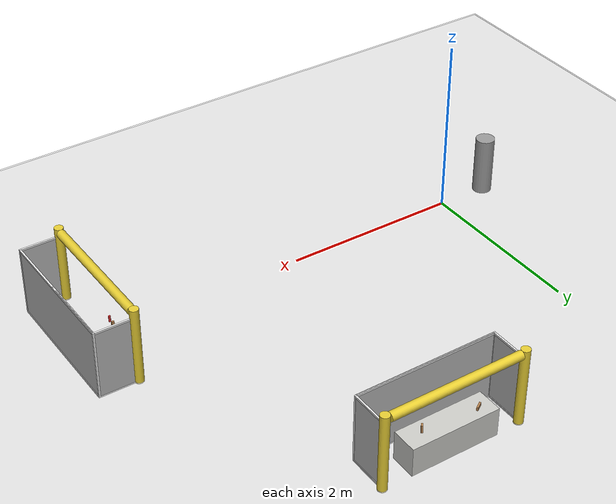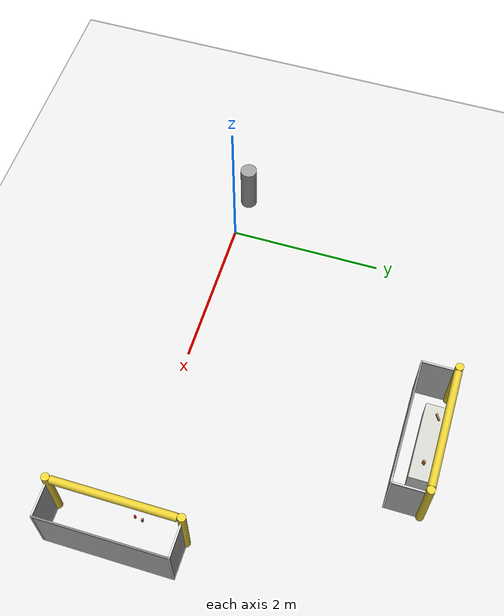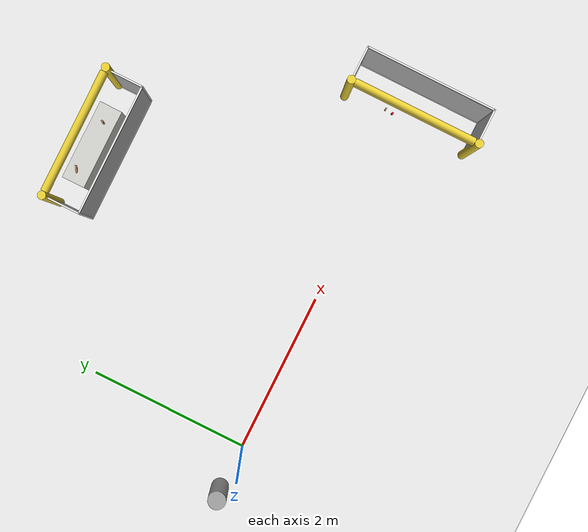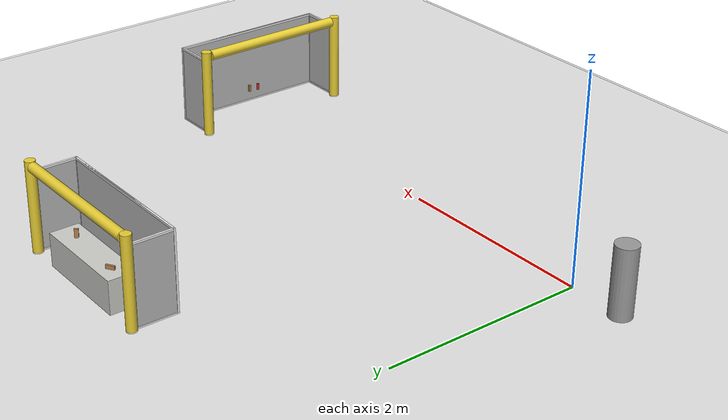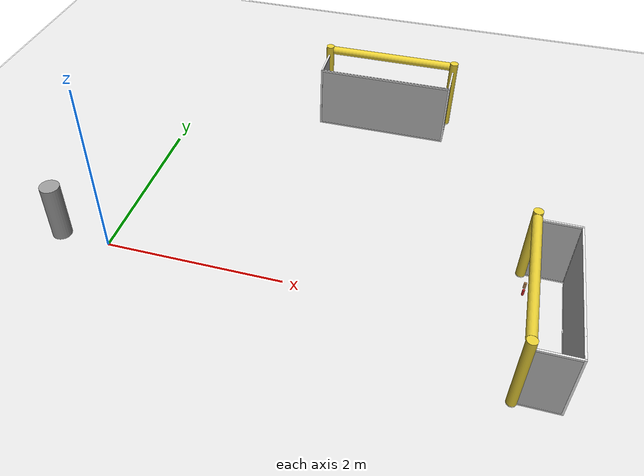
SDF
<sdf version="1.6">
 <world name="default">
  <model name="ground_plane">
   <static>1</static>
   <link name="link">
    <collision name="collision">
     <geometry><plane><normal>0 0 1</normal><size>100 100</size></plane></geometry>
     <surface>
      <contact><collide_bitmask>65535</collide_bitmask></contact>
      <friction><ode><mu>100</mu><mu2>50</mu2></ode></friction>
     </surface>
    </collision>
    <visual name="visual">
     <cast_shadows>0</cast_shadows>
     <geometry><plane><normal>0 0 1</normal><size>100 100</size></plane></geometry>
     <material>
      <script><uri>file://media/materials/scripts/gazebo.material</uri><name>Gazebo/Grey</name></script>
     </material>
    </visual>
   </link>
  </model>
  <model name="small_table_0">
   <link name="link">
    <inertial>
     <mass>1000</mass>
     <inertia><ixx>92.2402</ixx><ixy>0</ixy><ixz>0</ixz><iyy>15.7852</iyy><iyz>0</iyz><izz>90.2116</izz></inertia>
    </inertial>
    <visual name="visual">
     <geometry><box><size>0.287297 1 0.326929</size></box></geometry>
     <material>
      <script><name>Gazebo/CeilingTiled</name><uri>file://media/materials/scripts/gazebo.material</uri></script>
      <shader type="pixel"><normal_map>__default__</normal_map></shader>
      <ambient>0.7 0.7 0.7 1</ambient>
      <diffuse>0.9 0.9 0.9 1</diffuse>
      <specular>0.01 0.01 0.01 1</specular>
      <emissive>0 0 0 1</emissive>
     </material>
    </visual>
    <collision name="collision">
     <geometry><box><size>0.287297 1 0.326929</size></box></geometry>
     <surface>
      <friction>
       <ode><mu>1</mu><mu2>1</mu2><fdir1>0 0 0</fdir1><slip1>0</slip1><slip2>0</slip2></ode>
       <torsional>
        <coefficient>1</coefficient>
        <patch_radius>0</patch_radius>
        <surface_radius>0</surface_radius>
        <use_patch_radius>1</use_patch_radius>
        <ode><slip>0</slip></ode>
       </torsional>
      </friction>
      <bounce><restitution_coefficient>0</restitution_coefficient><threshold>1e+06</threshold></bounce>
      <contact>
       <collide_without_contact>0</collide_without_contact>
       <collide_without_contact_bitmask>1</collide_without_contact_bitmask>
       <collide_bitmask>1</collide_bitmask>
       <ode>
        <soft_cfm>0</soft_cfm>
        <soft_erp>0.2</soft_erp>
        <kp>1e+13</kp>
        <kd>1</kd>
        <max_vel>0.01</max_vel>
        <min_depth>0</min_depth>
       </ode>
       <bullet>
        <split_impulse>1</split_impulse>
        <split_impulse_penetration_threshold>-0.01</split_impulse_penetration_threshold>
        <soft_cfm>0</soft_cfm>
        <soft_erp>0.2</soft_erp>
        <kp>1e+13</kp>
        <kd>1</kd>
       </bullet>
      </contact>
     </surface>
    </collision>
   </link>
   <static>0</static>
   <pose>2.45053 3.20313 0.173964 0 -0 1.56878</pose>
  </model>
  <model name="RoboCup 2014 SPL Goal">
   <static>1</static>
   <link name="left_post">
    <pose>0 0.8 0.45 0 -0 0</pose>
    <collision name="collision">
     <geometry><cylinder><radius>0.05</radius><length>0.9</length></cylinder></geometry>
    </collision>
    <visual name="visual">
     <geometry><cylinder><radius>0.05</radius><length>0.9</length></cylinder></geometry>
     <material>
      <script><uri>file://media/materials/scripts/gazebo.material</uri><name>Gazebo/ZincYellow</name></script>
     </material>
    </visual>
   </link>
   <link name="left_support_horiz_lower">
    <pose>0.24 0.8 0.01 0 -0 0</pose>
    <collision name="collision"><geometry><box><size>0.38 0.02 0.02</size></box></geometry></collision>
    <visual name="visual">
     <geometry><box><size>0.38 0.02 0.02</size></box></geometry>
     <material>
      <script><uri>file://media/materials/scripts/gazebo.material</uri><name>Gazebo/White</name></script>
     </material>
    </visual>
   </link>
   <link name="left_support_horiz_upper">
    <pose>0.24 0.8 0.79 0 -0 0</pose>
    <collision name="collision"><geometry><box><size>0.38 0.02 0.02</size></box></geometry></collision>
    <visual name="visual">
     <geometry><box><size>0.38 0.02 0.02</size></box></geometry>
     <material>
      <script><uri>file://media/materials/scripts/gazebo.material</uri><name>Gazebo/White</name></script>
     </material>
    </visual>
   </link>
   <link name="left_support_vertical">
    <pose>0.44 0.8 0.4 3.14159 1.57079 3.14159</pose>
    <collision name="collision"><geometry><box><size>0.8 0.02 0.02</size></box></geometry></collision>
    <visual name="visual">
     <geometry><box><size>0.8 0.02 0.02</size></box></geometry>
     <material>
      <script><uri>file://media/materials/scripts/gazebo.material</uri><name>Gazebo/White</name></script>
     </material>
    </visual>
   </link>
   <link name="right_support_horiz_lower">
    <pose>0.24 -0.8 0.01 0 -0 0</pose>
    <collision name="collision"><geometry><box><size>0.38 0.02 0.02</size></box></geometry></collision>
    <visual name="visual">
     <geometry><box><size>0.38 0.02 0.02</size></box></geometry>
     <material>
      <script><uri>file://media/materials/scripts/gazebo.material</uri><name>Gazebo/White</name></script>
     </material>
    </visual>
   </link>
   <link name="right_support_horiz_upper">
    <pose>0.24 -0.8 0.79 0 -0 0</pose>
    <collision name="collision"><geometry><box><size>0.38 0.02 0.02</size></box></geometry></collision>
    <visual name="visual">
     <geometry><box><size>0.38 0.02 0.02</size></box></geometry>
     <material>
      <script><uri>file://media/materials/scripts/gazebo.material</uri><name>Gazebo/White</name></script>
     </material>
    </visual>
   </link>
   <link name="right_support_vertical">
    <pose>0.44 -0.8 0.4 3.14159 1.57079 3.14159</pose>
    <collision name="collision"><geometry><box><size>0.8 0.02 0.02</size></box></geometry></collision>
    <visual name="visual">
     <geometry><box><size>0.8 0.02 0.02</size></box></geometry>
     <material>
      <script><uri>file://media/materials/scripts/gazebo.material</uri><name>Gazebo/White</name></script>
     </material>
    </visual>
   </link>
   <link name="center_support_horiz_lower">
    <pose>0.44 0 0.01 3.14159 1.57079 3.14159</pose>
    <collision name="collision"><geometry><box><size>0.02 1.58 0.02</size></box></geometry></collision>
    <visual name="visual">
     <geometry><box><size>0.02 1.58 0.02</size></box></geometry>
     <material>
      <script><uri>file://media/materials/scripts/gazebo.material</uri><name>Gazebo/White</name></script>
     </material>
    </visual>
   </link>
   <link name="center_support_horiz_upper">
    <pose>0.44 0 0.79 3.14159 1.57079 3.14159</pose>
    <collision name="collision"><geometry><box><size>0.02 1.58 0.02</size></box></geometry></collision>
    <visual name="visual">
     <geometry><box><size>0.02 1.58 0.02</size></box></geometry>
     <material>
      <script><uri>file://media/materials/scripts/gazebo.material</uri><name>Gazebo/White</name></script>
     </material>
    </visual>
   </link>
   <link name="right_post">
    <pose>0 -0.8 0.45 0 -0 0</pose>
    <collision name="collision">
     <geometry><cylinder><radius>0.05</radius><length>0.9</length></cylinder></geometry>
    </collision>
    <visual name="visual">
     <geometry><cylinder><radius>0.05</radius><length>0.9</length></cylinder></geometry>
     <material>
      <script><uri>file://media/materials/scripts/gazebo.material</uri><name>Gazebo/ZincYellow</name></script>
     </material>
    </visual>
   </link>
   <link name="crossbar">
    <pose>0 0 0.85 1.57 1.57 0</pose>
    <collision name="collision">
     <geometry><cylinder><radius>0.05</radius><length>1.5</length></cylinder></geometry>
    </collision>
    <visual name="visual">
     <geometry><cylinder><radius>0.05</radius><length>1.5</length></cylinder></geometry>
     <material>
      <script><uri>file://media/materials/scripts/gazebo.material</uri><name>Gazebo/ZincYellow</name></script>
     </material>
    </visual>
   </link>
   <link name="center_net">
    <pose>0.44 0 0.4 0 -0 0</pose>
    <collision name="collision"><geometry><box><size>0.01 1.6 0.8</size></box></geometry></collision>
    <visual name="visual">
     <geometry><box><size>0.01 1.6 0.8</size></box></geometry>
     <material>
      <script>
       <uri>model://robocup09_spl_field/materials/scripts/</uri>
       <uri>model://robocup09_spl_field/materials/textures/</uri>
       <name>RoboCup/Net</name>
      </script>
     </material>
    </visual>
   </link>
   <link name="left_net">
    <pose>0.24 0.8 0.4 0 -0 0</pose>
    <collision name="collision"><geometry><box><size>0.38 0.01 0.76</size></box></geometry></collision>
    <visual name="visual">
     <geometry><box><size>0.38 0.01 0.76</size></box></geometry>
     <material>
      <script>
       <uri>model://robocup09_spl_field/materials/scripts/</uri>
       <uri>model://robocup09_spl_field/materials/textures/</uri>
       <name>RoboCup/Net</name>
      </script>
     </material>
    </visual>
   </link>
   <link name="right_net">
    <pose>0.24 -0.8 0.4 0 -0 0</pose>
    <collision name="collision"><geometry><box><size>0.38 0.01 0.76</size></box></geometry></collision>
    <visual name="visual">
     <geometry><box><size>0.38 0.01 0.76</size></box></geometry>
     <material>
      <script>
       <uri>model://robocup09_spl_field/materials/scripts/</uri>
       <uri>model://robocup09_spl_field/materials/textures/</uri>
       <name>RoboCup/Net</name>
      </script>
     </material>
    </visual>
   </link>
   <pose>4.37127 -0.005545 0 0 -0 0</pose>
  </model>
  <model name="RoboCup 2014 SPL Goal_1">
   <static>1</static>
   <link name="left_post">
    <pose>0 0.8 0.45 0 -0 0</pose>
    <collision name="collision">
     <geometry><cylinder><radius>0.05</radius><length>0.9</length></cylinder></geometry>
    </collision>
    <visual name="visual">
     <geometry><cylinder><radius>0.05</radius><length>0.9</length></cylinder></geometry>
     <material>
      <script><uri>file://media/materials/scripts/gazebo.material</uri><name>Gazebo/ZincYellow</name></script>
     </material>
    </visual>
   </link>
   <link name="left_support_horiz_lower">
    <pose>0.24 0.8 0.01 0 -0 0</pose>
    <collision name="collision"><geometry><box><size>0.38 0.02 0.02</size></box></geometry></collision>
    <visual name="visual">
     <geometry><box><size>0.38 0.02 0.02</size></box></geometry>
     <material>
      <script><uri>file://media/materials/scripts/gazebo.material</uri><name>Gazebo/White</name></script>
     </material>
    </visual>
   </link>
   <link name="left_support_horiz_upper">
    <pose>0.24 0.8 0.79 0 -0 0</pose>
    <collision name="collision"><geometry><box><size>0.38 0.02 0.02</size></box></geometry></collision>
    <visual name="visual">
     <geometry><box><size>0.38 0.02 0.02</size></box></geometry>
     <material>
      <script><uri>file://media/materials/scripts/gazebo.material</uri><name>Gazebo/White</name></script>
     </material>
    </visual>
   </link>
   <link name="left_support_vertical">
    <pose>0.44 0.8 0.4 3.14159 1.57079 3.14159</pose>
    <collision name="collision"><geometry><box><size>0.8 0.02 0.02</size></box></geometry></collision>
    <visual name="visual">
     <geometry><box><size>0.8 0.02 0.02</size></box></geometry>
     <material>
      <script><uri>file://media/materials/scripts/gazebo.material</uri><name>Gazebo/White</name></script>
     </material>
    </visual>
   </link>
   <link name="right_support_horiz_lower">
    <pose>0.24 -0.8 0.01 0 -0 0</pose>
    <collision name="collision"><geometry><box><size>0.38 0.02 0.02</size></box></geometry></collision>
    <visual name="visual">
     <geometry><box><size>0.38 0.02 0.02</size></box></geometry>
     <material>
      <script><uri>file://media/materials/scripts/gazebo.material</uri><name>Gazebo/White</name></script>
     </material>
    </visual>
   </link>
   <link name="right_support_horiz_upper">
    <pose>0.24 -0.8 0.79 0 -0 0</pose>
    <collision name="collision"><geometry><box><size>0.38 0.02 0.02</size></box></geometry></collision>
    <visual name="visual">
     <geometry><box><size>0.38 0.02 0.02</size></box></geometry>
     <material>
      <script><uri>file://media/materials/scripts/gazebo.material</uri><name>Gazebo/White</name></script>
     </material>
    </visual>
   </link>
   <link name="right_support_vertical">
    <pose>0.44 -0.8 0.4 3.14159 1.57079 3.14159</pose>
    <collision name="collision"><geometry><box><size>0.8 0.02 0.02</size></box></geometry></collision>
    <visual name="visual">
     <geometry><box><size>0.8 0.02 0.02</size></box></geometry>
     <material>
      <script><uri>file://media/materials/scripts/gazebo.material</uri><name>Gazebo/White</name></script>
     </material>
    </visual>
   </link>
   <link name="center_support_horiz_lower">
    <pose>0.44 0 0.01 3.14159 1.57079 3.14159</pose>
    <collision name="collision"><geometry><box><size>0.02 1.58 0.02</size></box></geometry></collision>
    <visual name="visual">
     <geometry><box><size>0.02 1.58 0.02</size></box></geometry>
     <material>
      <script><uri>file://media/materials/scripts/gazebo.material</uri><name>Gazebo/White</name></script>
     </material>
    </visual>
   </link>
   <link name="center_support_horiz_upper">
    <pose>0.44 0 0.79 3.14159 1.57079 3.14159</pose>
    <collision name="collision"><geometry><box><size>0.02 1.58 0.02</size></box></geometry></collision>
    <visual name="visual">
     <geometry><box><size>0.02 1.58 0.02</size></box></geometry>
     <material>
      <script><uri>file://media/materials/scripts/gazebo.material</uri><name>Gazebo/White</name></script>
     </material>
    </visual>
   </link>
   <link name="right_post">
    <pose>0 -0.8 0.45 0 -0 0</pose>
    <collision name="collision">
     <geometry><cylinder><radius>0.05</radius><length>0.9</length></cylinder></geometry>
    </collision>
    <visual name="visual">
     <geometry><cylinder><radius>0.05</radius><length>0.9</length></cylinder></geometry>
     <material>
      <script><uri>file://media/materials/scripts/gazebo.material</uri><name>Gazebo/ZincYellow</name></script>
     </material>
    </visual>
   </link>
   <link name="crossbar">
    <pose>0 0 0.85 1.57 1.57 0</pose>
    <collision name="collision">
     <geometry><cylinder><radius>0.05</radius><length>1.5</length></cylinder></geometry>
    </collision>
    <visual name="visual">
     <geometry><cylinder><radius>0.05</radius><length>1.5</length></cylinder></geometry>
     <material>
      <script><uri>file://media/materials/scripts/gazebo.material</uri><name>Gazebo/ZincYellow</name></script>
     </material>
    </visual>
   </link>
   <link name="center_net">
    <pose>0.44 0 0.4 0 -0 0</pose>
    <collision name="collision"><geometry><box><size>0.01 1.6 0.8</size></box></geometry></collision>
    <visual name="visual">
     <geometry><box><size>0.01 1.6 0.8</size></box></geometry>
     <material>
      <script>
       <uri>model://robocup09_spl_field/materials/scripts/</uri>
       <uri>model://robocup09_spl_field/materials/textures/</uri>
       <name>RoboCup/Net</name>
      </script>
     </material>
    </visual>
   </link>
   <link name="left_net">
    <pose>0.24 0.8 0.4 0 -0 0</pose>
    <collision name="collision"><geometry><box><size>0.38 0.01 0.76</size></box></geometry></collision>
    <visual name="visual">
     <geometry><box><size>0.38 0.01 0.76</size></box></geometry>
     <material>
      <script>
       <uri>model://robocup09_spl_field/materials/scripts/</uri>
       <uri>model://robocup09_spl_field/materials/textures/</uri>
       <name>RoboCup/Net</name>
      </script>
     </material>
    </visual>
   </link>
   <link name="right_net">
    <pose>0.24 -0.8 0.4 0 -0 0</pose>
    <collision name="collision"><geometry><box><size>0.38 0.01 0.76</size></box></geometry></collision>
    <visual name="visual">
     <geometry><box><size>0.38 0.01 0.76</size></box></geometry>
     <material>
      <script>
       <uri>model://robocup09_spl_field/materials/scripts/</uri>
       <uri>model://robocup09_spl_field/materials/textures/</uri>
       <name>RoboCup/Net</name>
      </script>
     </material>
    </visual>
   </link>
   <pose>2.46374 3.31443 -0 0 0 -1.56937</pose>
  </model>
  <model name="unit_cylinder">
   <link name="link">
    <inertial>
     <mass>1</mass>
     <inertia><ixx>0.145833</ixx><ixy>0</ixy><ixz>0</ixz><iyy>0.145833</iyy><iyz>0</iyz><izz>0.125</izz></inertia>
    </inertial>
    <visual name="visual">
     <geometry><cylinder><radius>0.108142</radius><length>0.679054</length></cylinder></geometry>
     <material>
      <script><name>Gazebo/Grey</name><uri>file://media/materials/scripts/gazebo.material</uri></script>
     </material>
    </visual>
    <collision name="collision">
     <geometry><cylinder><radius>0.108142</radius><length>0.679054</length></cylinder></geometry>
     <surface>
      <friction>
       <ode><mu>1</mu><mu2>1</mu2><fdir1>0 0 0</fdir1><slip1>0</slip1><slip2>0</slip2></ode>
       <torsional>
        <coefficient>1</coefficient>
        <patch_radius>0</patch_radius>
        <surface_radius>0</surface_radius>
        <use_patch_radius>1</use_patch_radius>
        <ode><slip>0</slip></ode>
       </torsional>
      </friction>
      <bounce><restitution_coefficient>0</restitution_coefficient><threshold>1e+06</threshold></bounce>
      <contact>
       <collide_without_contact>0</collide_without_contact>
       <collide_without_contact_bitmask>1</collide_without_contact_bitmask>
       <collide_bitmask>1</collide_bitmask>
       <ode>
        <soft_cfm>0</soft_cfm>
        <soft_erp>0.2</soft_erp>
        <kp>1e+13</kp>
        <kd>1</kd>
        <max_vel>0.01</max_vel>
        <min_depth>0</min_depth>
       </ode>
       <bullet>
        <split_impulse>1</split_impulse>
        <split_impulse_penetration_threshold>-0.01</split_impulse_penetration_threshold>
        <soft_cfm>0</soft_cfm>
        <soft_erp>0.2</soft_erp>
        <kp>1e+13</kp>
        <kd>1</kd>
       </bullet>
      </contact>
     </surface>
    </collision>
   </link>
   <static>0</static>
   <pose>-0.564139 0.019757 0.350018 -2e-06 -2e-06 4e-06</pose>
  </model>
  <model name="Grasp_Rectangular_0">
   <link name="link">
    <inertial>
     <mass>0.05</mass>
     <inertia>
      <ixx>7.243e-05</ixx>
      <ixy>0</ixy>
      <ixz>0</ixz>
      <iyy>6.624e-05</iyy>
      <iyz>0</iyz>
      <izz>1.446e-05</izz>
     </inertia>
    </inertial>
    <visual name="visual">
     <geometry><box><size>0.018685 0.038411 0.085607</size></box></geometry>
     <material>
      <script><name>Gazebo/Wood</name><uri>file://media/materials/scripts/gazebo.material</uri></script>
      <shader type="vertex"><normal_map>__default__</normal_map></shader>
      <ambient>0.8 0.8 0.8 1</ambient>
      <diffuse>0.7 0.7 0.7 1</diffuse>
      <specular>0.01 0.01 0.01 1</specular>
      <emissive>0.2 0.2 0.2 1</emissive>
     </material>
    </visual>
    <collision name="collision">
     <geometry><box><size>0.018685 0.038411 0.085607</size></box></geometry>
     <surface>
      <friction>
       <ode><mu>20</mu><mu2>20</mu2><fdir1>0 0 0</fdir1><slip1>0</slip1><slip2>0</slip2></ode>
       <torsional>
        <coefficient>1</coefficient>
        <patch_radius>0</patch_radius>
        <surface_radius>0</surface_radius>
        <use_patch_radius>1</use_patch_radius>
        <ode><slip>0</slip></ode>
       </torsional>
      </friction>
      <bounce><restitution_coefficient>0</restitution_coefficient><threshold>1e+06</threshold></bounce>
      <contact>
       <collide_without_contact>0</collide_without_contact>
       <collide_without_contact_bitmask>1</collide_without_contact_bitmask>
       <collide_bitmask>1</collide_bitmask>
       <ode>
        <soft_cfm>0</soft_cfm>
        <soft_erp>0.2</soft_erp>
        <kp>1e+13</kp>
        <kd>1</kd>
        <max_vel>0.01</max_vel>
        <min_depth>0</min_depth>
       </ode>
       <bullet>
        <split_impulse>1</split_impulse>
        <split_impulse_penetration_threshold>-0.01</split_impulse_penetration_threshold>
        <soft_cfm>0</soft_cfm>
        <soft_erp>0.2</soft_erp>
        <kp>1e+13</kp>
        <kd>1</kd>
       </bullet>
      </contact>
     </surface>
    </collision>
   </link>
   <static>0</static>
   <pose>2.74107 3.19481 0.380232 -1.1e-05 -6e-06 -0.583109</pose>
  </model>
  <model name="Grasp_Rectangular_1">
   <link name="link">
    <inertial>
     <mass>0.05</mass>
     <inertia>
      <ixx>7.243e-05</ixx>
      <ixy>0</ixy>
      <ixz>0</ixz>
      <iyy>6.624e-05</iyy>
      <iyz>0</iyz>
      <izz>1.446e-05</izz>
     </inertia>
    </inertial>
    <visual name="visual">
     <geometry><box><size>0.018685 0.038411 0.085607</size></box></geometry>
     <material>
      <script><name>Gazebo/Wood</name><uri>file://media/materials/scripts/gazebo.material</uri></script>
      <shader type="vertex"><normal_map>__default__</normal_map></shader>
      <ambient>0.8 0.8 0.8 1</ambient>
      <diffuse>0.7 0.7 0.7 1</diffuse>
      <specular>0.01 0.01 0.01 1</specular>
      <emissive>0.2 0.2 0.2 1</emissive>
     </material>
    </visual>
    <collision name="collision">
     <geometry><box><size>0.018685 0.038411 0.085607</size></box></geometry>
     <surface>
      <friction>
       <ode><mu>20</mu><mu2>20</mu2><fdir1>0 0 0</fdir1><slip1>0</slip1><slip2>0</slip2></ode>
       <torsional>
        <coefficient>1</coefficient>
        <patch_radius>0</patch_radius>
        <surface_radius>0</surface_radius>
        <use_patch_radius>1</use_patch_radius>
        <ode><slip>0</slip></ode>
       </torsional>
      </friction>
      <bounce><restitution_coefficient>0</restitution_coefficient><threshold>1e+06</threshold></bounce>
      <contact>
       <collide_without_contact>0</collide_without_contact>
       <collide_without_contact_bitmask>1</collide_without_contact_bitmask>
       <collide_bitmask>1</collide_bitmask>
       <ode>
        <soft_cfm>0</soft_cfm>
        <soft_erp>0.2</soft_erp>
        <kp>1e+13</kp>
        <kd>1</kd>
        <max_vel>0.01</max_vel>
        <min_depth>0</min_depth>
       </ode>
       <bullet>
        <split_impulse>1</split_impulse>
        <split_impulse_penetration_threshold>-0.01</split_impulse_penetration_threshold>
        <soft_cfm>0</soft_cfm>
        <soft_erp>0.2</soft_erp>
        <kp>1e+13</kp>
        <kd>1</kd>
       </bullet>
      </contact>
     </surface>
    </collision>
   </link>
   <static>0</static>
   <pose>2.10787 3.23208 0.356634 1.5708 -0 -1.00679</pose>
  </model>
  <model name="Grasp_Rectangular">
   <link name="link">
    <inertial>
     <mass>0.0282956</mass>
     <inertia>
      <ixx>1.26169e-05</ixx>
      <ixy>0</ixy>
      <ixz>0</ixz>
      <iyy>1.16642e-05</iyy>
      <iyz>0</iyz>
      <izz>2.59914e-06</izz>
     </inertia>
    </inertial>
    <visual name="visual">
     <geometry><box><size>0.018685 0.027444 0.067805</size></box></geometry>
     <material>
      <script><name>Gazebo/Wood</name><uri>file://media/materials/scripts/gazebo.material</uri></script>
      <shader type="vertex"><normal_map>__default__</normal_map></shader>
      <ambient>0.8 0.8 0.8 1</ambient>
      <diffuse>0.7 0.7 0.7 1</diffuse>
      <specular>0.01 0.01 0.01 1</specular>
      <emissive>0.2 0.2 0.2 1</emissive>
     </material>
    </visual>
    <collision name="collision">
     <geometry><box><size>0.018685 0.027444 0.067805</size></box></geometry>
     <surface>
      <friction>
       <ode><mu>20</mu><mu2>20</mu2><fdir1>0 0 0</fdir1><slip1>0</slip1><slip2>0</slip2></ode>
       <torsional>
        <coefficient>1</coefficient>
        <patch_radius>0</patch_radius>
        <surface_radius>0</surface_radius>
        <use_patch_radius>1</use_patch_radius>
        <ode><slip>0</slip></ode>
       </torsional>
      </friction>
      <bounce><restitution_coefficient>0</restitution_coefficient><threshold>1e+06</threshold></bounce>
      <contact>
       <collide_without_contact>0</collide_without_contact>
       <collide_without_contact_bitmask>1</collide_without_contact_bitmask>
       <collide_bitmask>1</collide_bitmask>
       <ode>
        <soft_cfm>0</soft_cfm>
        <soft_erp>0.2</soft_erp>
        <kp>1e+13</kp>
        <kd>1</kd>
        <max_vel>0.01</max_vel>
        <min_depth>0</min_depth>
       </ode>
       <bullet>
        <split_impulse>1</split_impulse>
        <split_impulse_penetration_threshold>-0.01</split_impulse_penetration_threshold>
        <soft_cfm>0</soft_cfm>
        <soft_erp>0.2</soft_erp>
        <kp>1e+13</kp>
        <kd>1</kd>
       </bullet>
      </contact>
     </surface>
    </collision>
   </link>
   <static>0</static>
   <pose>4.3682 0.287016 0.371331 0 -0 1.44128</pose>
  </model>
  <model name="grasp_cylinder_2">
   <link name="link">
    <inertial>
     <mass>0.0408073</mass>
     <inertia>
      <ixx>1.67798e-05</ixx>
      <ixy>0</ixy>
      <ixz>0</ixz>
      <iyy>1.67798e-05</iyy>
      <iyz>0</iyz>
      <izz>3.02683e-06</izz>
     </inertia>
    </inertial>
    <visual name="visual">
     <geometry><cylinder><radius>0.01218</radius><length>0.0670027</length></cylinder></geometry>
     <material>
      <script><name>Gazebo/Red</name><uri>file://media/materials/scripts/gazebo.material</uri></script>
      <shader type="vertex"><normal_map>__default__</normal_map></shader>
      <ambient>1 0 0 1</ambient>
      <diffuse>0.7 0.7 0.7 1</diffuse>
      <specular>0.01 0.01 0.01 1</specular>
      <emissive>0 0 0 1</emissive>
     </material>
    </visual>
    <collision name="collision">
     <geometry><cylinder><radius>0.01218</radius><length>0.067002</length></cylinder></geometry>
     <surface>
      <friction>
       <ode><mu>100</mu><mu2>100</mu2><fdir1>0 0 0</fdir1><slip1>0</slip1><slip2>0</slip2></ode>
       <torsional>
        <coefficient>1</coefficient>
        <patch_radius>0</patch_radius>
        <surface_radius>0</surface_radius>
        <use_patch_radius>1</use_patch_radius>
        <ode><slip>0</slip></ode>
       </torsional>
      </friction>
      <bounce><restitution_coefficient>0</restitution_coefficient><threshold>1e+06</threshold></bounce>
      <contact>
       <collide_without_contact>0</collide_without_contact>
       <collide_without_contact_bitmask>1</collide_without_contact_bitmask>
       <collide_bitmask>1</collide_bitmask>
       <ode>
        <soft_cfm>0</soft_cfm>
        <soft_erp>0.2</soft_erp>
        <kp>1e+13</kp>
        <kd>1</kd>
        <max_vel>0.01</max_vel>
        <min_depth>0</min_depth>
       </ode>
       <bullet>
        <split_impulse>1</split_impulse>
        <split_impulse_penetration_threshold>-0.01</split_impulse_penetration_threshold>
        <soft_cfm>0</soft_cfm>
        <soft_erp>0.2</soft_erp>
        <kp>1e+13</kp>
        <kd>1</kd>
       </bullet>
      </contact>
     </surface>
    </collision>
   </link>
   <static>0</static>
   <pose>4.35571 0.193548 0.370929 4.7e-05 -4.2e-05 -0.487122</pose>
  </model>
  <model name="Floor_room">
   <link name="main">
    <pose>0 0 0.01 0 -0 0</pose>
    <inertial>
     <mass>1</mass>
     <inertia><ixx>1</ixx><ixy>0</ixy><ixz>0</ixz><iyy>1</iyy><iyz>0</iyz><izz>1</izz></inertia>
    </inertial>
    <visual name="main_Visual">
     <geometry><box><size>20 20 0.001</size></box></geometry>
     <material>
      <script>
       <uri>model://Floor_room/materials/scripts</uri>
       <uri>model://Floor_room/materials/textures</uri>
       <name>floor_room</name>
      </script>
      <ambient>0.9 0.9 0.9 0</ambient>
      <shader type="vertex"><normal_map>__default__</normal_map></shader>
      <diffuse>1 1 1 1</diffuse>
      <specular>0.2 0.2 0.2 1</specular>
      <emissive>0.9 0.9 0.9 1</emissive>
     </material>
     <transparency>0.4</transparency>
    </visual>
    <collision name="main_Collision">
     <geometry><box><size>20 20 0.001</size></box></geometry>
     <surface>
      <friction>
       <ode><mu>1</mu><mu2>1</mu2><fdir1>0 0 0</fdir1><slip1>0</slip1><slip2>0</slip2></ode>
       <torsional>
        <coefficient>1</coefficient>
        <patch_radius>0</patch_radius>
        <surface_radius>0</surface_radius>
        <use_patch_radius>1</use_patch_radius>
        <ode><slip>0</slip></ode>
       </torsional>
      </friction>
      <bounce><restitution_coefficient>0</restitution_coefficient><threshold>1e+06</threshold></bounce>
      <contact>
       <collide_without_contact>0</collide_without_contact>
       <collide_without_contact_bitmask>1</collide_without_contact_bitmask>
       <collide_bitmask>1</collide_bitmask>
       <ode>
        <soft_cfm>0</soft_cfm>
        <soft_erp>0.2</soft_erp>
        <kp>1e+13</kp>
        <kd>1</kd>
        <max_vel>0.01</max_vel>
        <min_depth>0</min_depth>
       </ode>
       <bullet>
        <split_impulse>1</split_impulse>
        <split_impulse_penetration_threshold>-0.01</split_impulse_penetration_threshold>
        <soft_cfm>0</soft_cfm>
        <soft_erp>0.2</soft_erp>
        <kp>1e+13</kp>
        <kd>1</kd>
       </bullet>
      </contact>
     </surface>
    </collision>
   </link>
   <static>1</static>
  </model>
 </world>
</sdf>
